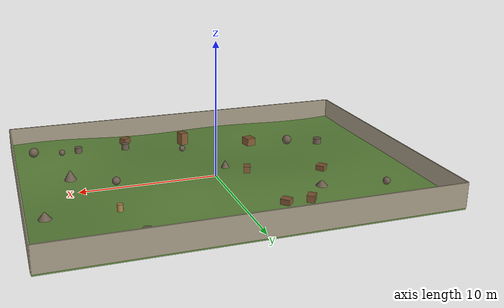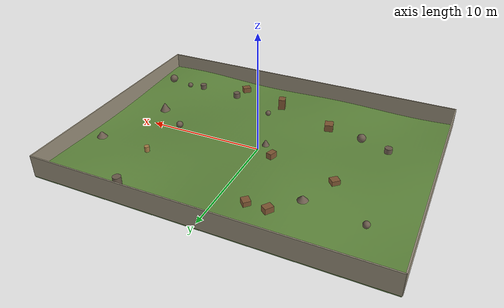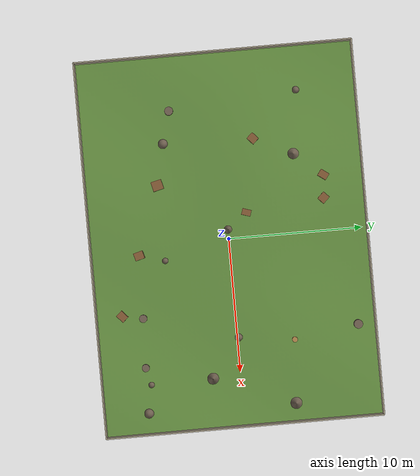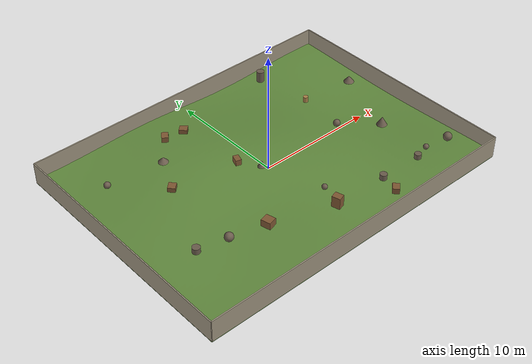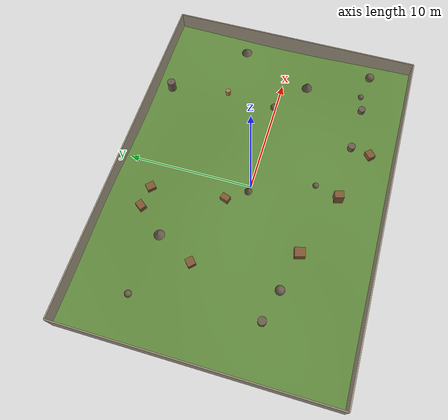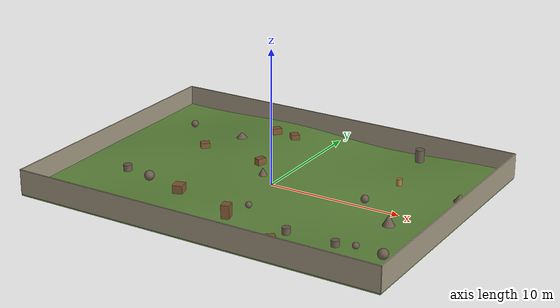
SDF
<?xml version='1.0' encoding='utf-8'?>
<sdf version="1.7">
  <world name="terrain_4">
    <gravity>0 0 -9.8</gravity>
    <plugin name="gazebo_ros_state" filename="libgazebo_ros_state.so">
      <ros>
        <namespace>/gazebo</namespace>
      </ros>
    </plugin>
    <physics name="ode_physics" type="ode">
      <max_step_size>0.001</max_step_size>
      <real_time_factor>1</real_time_factor>
      <real_time_update_rate>1000</real_time_update_rate>
      <ode>
        <solver>
          <type>quick</type>
          <iters>150</iters>
          <sor>1.3</sor>
        </solver>
        <constraints>
          <cfm>0</cfm>
          <erp>0.2</erp>
          <contact_max_correcting_vel>0.2</contact_max_correcting_vel>
          <contact_surface_layer>0.001</contact_surface_layer>
        </constraints>
      </ode>
    </physics>
    <light name="sun" type="directional">
      <pose>0 0 42 0 0 0</pose>
      <diffuse>0.92 0.91 0.88 1</diffuse>
      <specular>0.18 0.18 0.16 1</specular>
      <direction>-0.35 -0.28 -0.9</direction>
      <cast_shadows>true</cast_shadows>
    </light>
    <light name="fill" type="point">
      <pose>0 0 6 0 0 0</pose>
      <diffuse>0.35 0.36 0.34 1</diffuse>
      <specular>0.02 0.02 0.02 1</specular>
      <cast_shadows>false</cast_shadows>
      <attenuation>
        <range>80</range>
        <constant>0.5</constant>
        <linear>0.02</linear>
      </attenuation>
    </light>
    <scene>
      <ambient>0.52 0.56 0.48 1</ambient>
      <background>0.58 0.76 0.92 1</background>
    </scene>
    <gui fullscreen="false">
      <camera name="user_camera">
        <pose>19.6 -18.626087 23.8 0 0.65 2.2</pose>
        <view_controller>orbit</view_controller>
      </camera>
    </gui>
    <model name="terrain_4_structure">
      <static>true</static>
      <link name="structure">
        <collision name="ground_surface_collision">
          <pose>0 0 0 0 0 0</pose>
          <geometry>
            <mesh>
              <uri>3DModel/terrain/surfaces/terrain_4_ground_surface.stl</uri>
            </mesh>
          </geometry>
          <max_contacts>40</max_contacts>
          <surface>
            <friction>
              <ode>
                <mu>8</mu>
                <mu2>8</mu2>
              </ode>
            </friction>
            <contact>
              <ode>
                <kp>1e7</kp>
                <kd>1000</kd>
                <max_vel>0.1</max_vel>
                <min_depth>0.001</min_depth>
              </ode>
            </contact>
          </surface>
        </collision>
        <visual name="ground_surface_visual">
          <pose>0 0 0 0 0 0</pose>
          <geometry>
            <mesh>
              <uri>3DModel/terrain/surfaces/terrain_4_ground_surface.stl</uri>
            </mesh>
          </geometry>
          <material>
            <ambient>0.38 0.54 0.24 1</ambient>
            <diffuse>0.38 0.54 0.24 1</diffuse>
          </material>
        </visual>
        <collision name="rock_box_0_collision">
          <pose>-7.30434783 2.43478261 0.708865631 0 0 0.749227571</pose>
          <geometry>
            <box>
              <size>0.669565217 0.608695652 0.395652174</size>
            </box>
          </geometry>
          <max_contacts>40</max_contacts>
          <surface>
            <friction>
              <ode>
                <mu>2</mu>
                <mu2>2</mu2>
              </ode>
            </friction>
            <contact>
              <ode>
                <kp>1e7</kp>
                <kd>1000</kd>
                <max_vel>0.1</max_vel>
                <min_depth>0.001</min_depth>
              </ode>
            </contact>
          </surface>
        </collision>
        <visual name="rock_box_0_visual">
          <pose>-7.30434783 2.43478261 0.708865631 0 0 0.749227571</pose>
          <geometry>
            <box>
              <size>0.669565217 0.608695652 0.395652174</size>
            </box>
          </geometry>
          <material>
            <ambient>0.50 0.34 0.20 1</ambient>
            <diffuse>0.50 0.34 0.20 1</diffuse>
          </material>
        </visual>
        <collision name="rock_round_1_collision">
          <pose>1.2173913 -4.86956522 0.599886474 0 0 0</pose>
          <geometry>
            <sphere>
              <radius>0.23130434782608697</radius>
            </sphere>
          </geometry>
          <max_contacts>40</max_contacts>
          <surface>
            <friction>
              <ode>
                <mu>2</mu>
                <mu2>2</mu2>
              </ode>
            </friction>
            <contact>
              <ode>
                <kp>1e7</kp>
                <kd>1000</kd>
                <max_vel>0.1</max_vel>
                <min_depth>0.001</min_depth>
              </ode>
            </contact>
          </surface>
        </collision>
        <visual name="rock_round_1_visual">
          <pose>1.2173913 -4.86956522 0.599886474 0 0 0</pose>
          <geometry>
            <sphere>
              <radius>0.23130434782608697</radius>
            </sphere>
          </geometry>
          <material>
            <ambient>0.42 0.36 0.30 1</ambient>
            <diffuse>0.42 0.36 0.30 1</diffuse>
          </material>
        </visual>
        <collision name="stone_column_2_collision">
          <pose>7.91304348 4.26086957 0.440526845 0 0 0</pose>
          <geometry>
            <cylinder>
              <radius>0.20695652173913046</radius>
              <length>0.4869565217391305</length>
            </cylinder>
          </geometry>
          <max_contacts>40</max_contacts>
          <surface>
            <friction>
              <ode>
                <mu>2</mu>
                <mu2>2</mu2>
              </ode>
            </friction>
            <contact>
              <ode>
                <kp>1e7</kp>
                <kd>1000</kd>
                <max_vel>0.1</max_vel>
                <min_depth>0.001</min_depth>
              </ode>
            </contact>
          </surface>
        </collision>
        <visual name="stone_column_2_visual">
          <pose>7.91304348 4.26086957 0.440526845 0 0 0</pose>
          <geometry>
            <cylinder>
              <radius>0.20695652173913046</radius>
              <length>0.4869565217391305</length>
            </cylinder>
          </geometry>
          <material>
            <ambient>0.66 0.50 0.28 1</ambient>
            <diffuse>0.66 0.50 0.28 1</diffuse>
          </material>
        </visual>
        <collision name="rock_box_3_collision">
          <pose>-2.43478261 7.30434783 0.75622765 0 0 -0.8005458</pose>
          <geometry>
            <box>
              <size>0.669565217 0.608695652 0.395652174</size>
            </box>
          </geometry>
          <max_contacts>40</max_contacts>
          <surface>
            <friction>
              <ode>
                <mu>2</mu>
                <mu2>2</mu2>
              </ode>
            </friction>
            <contact>
              <ode>
                <kp>1e7</kp>
                <kd>1000</kd>
                <max_vel>0.1</max_vel>
                <min_depth>0.001</min_depth>
              </ode>
            </contact>
          </surface>
        </collision>
        <visual name="rock_box_3_visual">
          <pose>-2.43478261 7.30434783 0.75622765 0 0 -0.8005458</pose>
          <geometry>
            <box>
              <size>0.669565217 0.608695652 0.395652174</size>
            </box>
          </geometry>
          <material>
            <ambient>0.50 0.34 0.20 1</ambient>
            <diffuse>0.50 0.34 0.20 1</diffuse>
          </material>
        </visual>
        <collision name="rock_round_4_collision">
          <pose>10.3478261 -6.69565217 0.640613592 0 0 0</pose>
          <geometry>
            <sphere>
              <radius>0.23130434782608697</radius>
            </sphere>
          </geometry>
          <max_contacts>40</max_contacts>
          <surface>
            <friction>
              <ode>
                <mu>2</mu>
                <mu2>2</mu2>
              </ode>
            </friction>
            <contact>
              <ode>
                <kp>1e7</kp>
                <kd>1000</kd>
                <max_vel>0.1</max_vel>
                <min_depth>0.001</min_depth>
              </ode>
            </contact>
          </surface>
        </collision>
        <visual name="rock_round_4_visual">
          <pose>10.3478261 -6.69565217 0.640613592 0 0 0</pose>
          <geometry>
            <sphere>
              <radius>0.23130434782608697</radius>
            </sphere>
          </geometry>
          <material>
            <ambient>0.42 0.36 0.30 1</ambient>
            <diffuse>0.42 0.36 0.30 1</diffuse>
          </material>
        </visual>
        <collision name="boundary_0_collision">
          <pose>0 -10.3478261 0.852173913 0 0 0</pose>
          <geometry>
            <box>
              <size>28 0.0973913043 1.82608696</size>
            </box>
          </geometry>
          <max_contacts>40</max_contacts>
          <surface>
            <friction>
              <ode>
                <mu>2</mu>
                <mu2>2</mu2>
              </ode>
            </friction>
            <contact>
              <ode>
                <kp>1e7</kp>
                <kd>1000</kd>
                <max_vel>0.1</max_vel>
                <min_depth>0.001</min_depth>
              </ode>
            </contact>
          </surface>
        </collision>
        <visual name="boundary_0_visual">
          <pose>0 -10.3478261 0.852173913 0 0 0</pose>
          <geometry>
            <box>
              <size>28 0.0973913043 1.82608696</size>
            </box>
          </geometry>
          <material>
            <ambient>0.62 0.58 0.50 1</ambient>
            <diffuse>0.62 0.58 0.50 1</diffuse>
          </material>
        </visual>
        <collision name="boundary_1_collision">
          <pose>14 0 0.852173913 0 0 1.57079633</pose>
          <geometry>
            <box>
              <size>20.6956522 0.0973913043 1.82608696</size>
            </box>
          </geometry>
          <max_contacts>40</max_contacts>
          <surface>
            <friction>
              <ode>
                <mu>2</mu>
                <mu2>2</mu2>
              </ode>
            </friction>
            <contact>
              <ode>
                <kp>1e7</kp>
                <kd>1000</kd>
                <max_vel>0.1</max_vel>
                <min_depth>0.001</min_depth>
              </ode>
            </contact>
          </surface>
        </collision>
        <visual name="boundary_1_visual">
          <pose>14 0 0.852173913 0 0 1.57079633</pose>
          <geometry>
            <box>
              <size>20.6956522 0.0973913043 1.82608696</size>
            </box>
          </geometry>
          <material>
            <ambient>0.62 0.58 0.50 1</ambient>
            <diffuse>0.62 0.58 0.50 1</diffuse>
          </material>
        </visual>
        <collision name="boundary_2_collision">
          <pose>0 10.3478261 0.852173913 0 0 3.14159265</pose>
          <geometry>
            <box>
              <size>28 0.0973913043 1.82608696</size>
            </box>
          </geometry>
          <max_contacts>40</max_contacts>
          <surface>
            <friction>
              <ode>
                <mu>2</mu>
                <mu2>2</mu2>
              </ode>
            </friction>
            <contact>
              <ode>
                <kp>1e7</kp>
                <kd>1000</kd>
                <max_vel>0.1</max_vel>
                <min_depth>0.001</min_depth>
              </ode>
            </contact>
          </surface>
        </collision>
        <visual name="boundary_2_visual">
          <pose>0 10.3478261 0.852173913 0 0 3.14159265</pose>
          <geometry>
            <box>
              <size>28 0.0973913043 1.82608696</size>
            </box>
          </geometry>
          <material>
            <ambient>0.62 0.58 0.50 1</ambient>
            <diffuse>0.62 0.58 0.50 1</diffuse>
          </material>
        </visual>
        <collision name="boundary_3_collision">
          <pose>-14 0 0.852173913 0 0 -1.57079633</pose>
          <geometry>
            <box>
              <size>20.6956522 0.0973913043 1.82608696</size>
            </box>
          </geometry>
          <max_contacts>40</max_contacts>
          <surface>
            <friction>
              <ode>
                <mu>2</mu>
                <mu2>2</mu2>
              </ode>
            </friction>
            <contact>
              <ode>
                <kp>1e7</kp>
                <kd>1000</kd>
                <max_vel>0.1</max_vel>
                <min_depth>0.001</min_depth>
              </ode>
            </contact>
          </surface>
        </collision>
        <visual name="boundary_3_visual">
          <pose>-14 0 0.852173913 0 0 -1.57079633</pose>
          <geometry>
            <box>
              <size>20.6956522 0.0973913043 1.82608696</size>
            </box>
          </geometry>
          <material>
            <ambient>0.62 0.58 0.50 1</ambient>
            <diffuse>0.62 0.58 0.50 1</diffuse>
          </material>
        </visual>
        <collision name="irregular_prop_0_collision">
          <pose>-4.15307704 7.43747727 0.822766621 0 0 0.945281499</pose>
          <geometry>
            <box>
              <size>0.714205937 0.544265324 0.473203677</size>
            </box>
          </geometry>
          <max_contacts>40</max_contacts>
          <surface>
            <friction>
              <ode>
                <mu>2</mu>
                <mu2>2</mu2>
              </ode>
            </friction>
            <contact>
              <ode>
                <kp>1e7</kp>
                <kd>1000</kd>
                <max_vel>0.1</max_vel>
                <min_depth>0.001</min_depth>
              </ode>
            </contact>
          </surface>
        </collision>
        <visual name="irregular_prop_0_visual">
          <pose>-4.15307704 7.43747727 0.822766621 0 0 0.945281499</pose>
          <geometry>
            <box>
              <size>0.714205937 0.544265324 0.473203677</size>
            </box>
          </geometry>
          <material>
            <ambient>0.50 0.34 0.20 1</ambient>
            <diffuse>0.50 0.34 0.20 1</diffuse>
          </material>
        </visual>
        <collision name="irregular_prop_1_collision">
          <pose>-9.89283804 -3.6285424 0.463335983 0 0 -2.81643884</pose>
          <geometry>
            <cylinder>
              <radius>0.31810157148684093</radius>
              <length>0.4577122383465519</length>
            </cylinder>
          </geometry>
          <max_contacts>40</max_contacts>
          <surface>
            <friction>
              <ode>
                <mu>2</mu>
                <mu2>2</mu2>
              </ode>
            </friction>
            <contact>
              <ode>
                <kp>1e7</kp>
                <kd>1000</kd>
                <max_vel>0.1</max_vel>
                <min_depth>0.001</min_depth>
              </ode>
            </contact>
          </surface>
        </collision>
        <visual name="irregular_prop_1_visual">
          <pose>-9.89283804 -3.6285424 0.463335983 0 0 -2.81643884</pose>
          <geometry>
            <cylinder>
              <radius>0.31810157148684093</radius>
              <length>0.4577122383465519</length>
            </cylinder>
          </geometry>
          <material>
            <ambient>0.42 0.36 0.30 1</ambient>
            <diffuse>0.42 0.36 0.30 1</diffuse>
          </material>
        </visual>
        <collision name="irregular_prop_2_collision">
          <pose>-10.6426815 5.94192272 0.583037257 0 0 -2.58608244</pose>
          <geometry>
            <sphere>
              <radius>0.26984292931482456</radius>
            </sphere>
          </geometry>
          <max_contacts>40</max_contacts>
          <surface>
            <friction>
              <ode>
                <mu>2</mu>
                <mu2>2</mu2>
              </ode>
            </friction>
            <contact>
              <ode>
                <kp>1e7</kp>
                <kd>1000</kd>
                <max_vel>0.1</max_vel>
                <min_depth>0.001</min_depth>
              </ode>
            </contact>
          </surface>
        </collision>
        <visual name="irregular_prop_2_visual">
          <pose>-10.6426815 5.94192272 0.583037257 0 0 -2.58608244</pose>
          <geometry>
            <sphere>
              <radius>0.26984292931482456</radius>
            </sphere>
          </geometry>
          <material>
            <ambient>0.42 0.36 0.30 1</ambient>
            <diffuse>0.42 0.36 0.30 1</diffuse>
          </material>
        </visual>
        <collision name="irregular_prop_3_collision">
          <pose>0 0 0 0 0 0</pose>
          <geometry>
            <mesh>
              <uri>3DModel/terrain/surfaces/terrain_4_irregular_prop_3.stl</uri>
            </mesh>
          </geometry>
          <max_contacts>40</max_contacts>
          <surface>
            <friction>
              <ode>
                <mu>8</mu>
                <mu2>8</mu2>
              </ode>
            </friction>
            <contact>
              <ode>
                <kp>1e7</kp>
                <kd>1000</kd>
                <max_vel>0.1</max_vel>
                <min_depth>0.001</min_depth>
              </ode>
            </contact>
          </surface>
        </collision>
        <visual name="irregular_prop_3_visual">
          <pose>0 0 0 0 0 0</pose>
          <geometry>
            <mesh>
              <uri>3DModel/terrain/surfaces/terrain_4_irregular_prop_3.stl</uri>
            </mesh>
          </geometry>
          <material>
            <ambient>0.42 0.36 0.30 1</ambient>
            <diffuse>0.42 0.36 0.30 1</diffuse>
          </material>
        </visual>
        <collision name="irregular_prop_4_collision">
          <pose>-4.42943409 -4.96416138 0.589715856 0 0 0.244772411</pose>
          <geometry>
            <box>
              <size>0.72628919 0.797720492 0.596664756</size>
            </box>
          </geometry>
          <max_contacts>40</max_contacts>
          <surface>
            <friction>
              <ode>
                <mu>2</mu>
                <mu2>2</mu2>
              </ode>
            </friction>
            <contact>
              <ode>
                <kp>1e7</kp>
                <kd>1000</kd>
                <max_vel>0.1</max_vel>
                <min_depth>0.001</min_depth>
              </ode>
            </contact>
          </surface>
        </collision>
        <visual name="irregular_prop_4_visual">
          <pose>-4.42943409 -4.96416138 0.589715856 0 0 0.244772411</pose>
          <geometry>
            <box>
              <size>0.72628919 0.797720492 0.596664756</size>
            </box>
          </geometry>
          <material>
            <ambient>0.50 0.34 0.20 1</ambient>
            <diffuse>0.50 0.34 0.20 1</diffuse>
          </material>
        </visual>
        <collision name="irregular_prop_5_collision">
          <pose>5.37438342 -6.88226621 0.543397025 0 0 2.36631415</pose>
          <geometry>
            <cylinder>
              <radius>0.29263253430047054</radius>
              <length>0.4763464510211125</length>
            </cylinder>
          </geometry>
          <max_contacts>40</max_contacts>
          <surface>
            <friction>
              <ode>
                <mu>2</mu>
                <mu2>2</mu2>
              </ode>
            </friction>
            <contact>
              <ode>
                <kp>1e7</kp>
                <kd>1000</kd>
                <max_vel>0.1</max_vel>
                <min_depth>0.001</min_depth>
              </ode>
            </contact>
          </surface>
        </collision>
        <visual name="irregular_prop_5_visual">
          <pose>5.37438342 -6.88226621 0.543397025 0 0 2.36631415</pose>
          <geometry>
            <cylinder>
              <radius>0.29263253430047054</radius>
              <length>0.4763464510211125</length>
            </cylinder>
          </geometry>
          <material>
            <ambient>0.42 0.36 0.30 1</ambient>
            <diffuse>0.42 0.36 0.30 1</diffuse>
          </material>
        </visual>
        <collision name="irregular_prop_6_collision">
          <pose>7.38722708 0.097555576 0.585598463 0 0 -0.573622824</pose>
          <geometry>
            <sphere>
              <radius>0.29050786326188927</radius>
            </sphere>
          </geometry>
          <max_contacts>40</max_contacts>
          <surface>
            <friction>
              <ode>
                <mu>2</mu>
                <mu2>2</mu2>
              </ode>
            </friction>
            <contact>
              <ode>
                <kp>1e7</kp>
                <kd>1000</kd>
                <max_vel>0.1</max_vel>
                <min_depth>0.001</min_depth>
              </ode>
            </contact>
          </surface>
        </collision>
        <visual name="irregular_prop_6_visual">
          <pose>7.38722708 0.097555576 0.585598463 0 0 -0.573622824</pose>
          <geometry>
            <sphere>
              <radius>0.29050786326188927</radius>
            </sphere>
          </geometry>
          <material>
            <ambient>0.42 0.36 0.30 1</ambient>
            <diffuse>0.42 0.36 0.30 1</diffuse>
          </material>
        </visual>
        <collision name="irregular_prop_7_collision">
          <pose>0 0 0 0 0 0</pose>
          <geometry>
            <mesh>
              <uri>3DModel/terrain/surfaces/terrain_4_irregular_prop_7.stl</uri>
            </mesh>
          </geometry>
          <max_contacts>40</max_contacts>
          <surface>
            <friction>
              <ode>
                <mu>8</mu>
                <mu2>8</mu2>
              </ode>
            </friction>
            <contact>
              <ode>
                <kp>1e7</kp>
                <kd>1000</kd>
                <max_vel>0.1</max_vel>
                <min_depth>0.001</min_depth>
              </ode>
            </contact>
          </surface>
        </collision>
        <visual name="irregular_prop_7_visual">
          <pose>0 0 0 0 0 0</pose>
          <geometry>
            <mesh>
              <uri>3DModel/terrain/surfaces/terrain_4_irregular_prop_7.stl</uri>
            </mesh>
          </geometry>
          <material>
            <ambient>0.42 0.36 0.30 1</ambient>
            <diffuse>0.42 0.36 0.30 1</diffuse>
          </material>
        </visual>
        <collision name="irregular_prop_8_collision">
          <pose>5.08595597 -8.426287 0.491145755 0 0 0.742199668</pose>
          <geometry>
            <box>
              <size>0.695734282 0.565475846 0.480070926</size>
            </box>
          </geometry>
          <max_contacts>40</max_contacts>
          <surface>
            <friction>
              <ode>
                <mu>2</mu>
                <mu2>2</mu2>
              </ode>
            </friction>
            <contact>
              <ode>
                <kp>1e7</kp>
                <kd>1000</kd>
                <max_vel>0.1</max_vel>
                <min_depth>0.001</min_depth>
              </ode>
            </contact>
          </surface>
        </collision>
        <visual name="irregular_prop_8_visual">
          <pose>5.08595597 -8.426287 0.491145755 0 0 0.742199668</pose>
          <geometry>
            <box>
              <size>0.695734282 0.565475846 0.480070926</size>
            </box>
          </geometry>
          <material>
            <ambient>0.50 0.34 0.20 1</ambient>
            <diffuse>0.50 0.34 0.20 1</diffuse>
          </material>
        </visual>
        <collision name="irregular_prop_9_collision">
          <pose>7.16668719 9.05915117 0.632088249 0 0 -1.33823746</pose>
          <geometry>
            <cylinder>
              <radius>0.32875651469616</radius>
              <length>0.9522665152724484</length>
            </cylinder>
          </geometry>
          <max_contacts>40</max_contacts>
          <surface>
            <friction>
              <ode>
                <mu>2</mu>
                <mu2>2</mu2>
              </ode>
            </friction>
            <contact>
              <ode>
                <kp>1e7</kp>
                <kd>1000</kd>
                <max_vel>0.1</max_vel>
                <min_depth>0.001</min_depth>
              </ode>
            </contact>
          </surface>
        </collision>
        <visual name="irregular_prop_9_visual">
          <pose>7.16668719 9.05915117 0.632088249 0 0 -1.33823746</pose>
          <geometry>
            <cylinder>
              <radius>0.32875651469616</radius>
              <length>0.9522665152724484</length>
            </cylinder>
          </geometry>
          <material>
            <ambient>0.42 0.36 0.30 1</ambient>
            <diffuse>0.42 0.36 0.30 1</diffuse>
          </material>
        </visual>
        <collision name="irregular_prop_10_collision">
          <pose>12.4485348 -7.05781447 0.757131779 0 0 -1.43236082</pose>
          <geometry>
            <sphere>
              <radius>0.3633810920235708</radius>
            </sphere>
          </geometry>
          <max_contacts>40</max_contacts>
          <surface>
            <friction>
              <ode>
                <mu>2</mu>
                <mu2>2</mu2>
              </ode>
            </friction>
            <contact>
              <ode>
                <kp>1e7</kp>
                <kd>1000</kd>
                <max_vel>0.1</max_vel>
                <min_depth>0.001</min_depth>
              </ode>
            </contact>
          </surface>
        </collision>
        <visual name="irregular_prop_10_visual">
          <pose>12.4485348 -7.05781447 0.757131779 0 0 -1.43236082</pose>
          <geometry>
            <sphere>
              <radius>0.3633810920235708</radius>
            </sphere>
          </geometry>
          <material>
            <ambient>0.42 0.36 0.30 1</ambient>
            <diffuse>0.42 0.36 0.30 1</diffuse>
          </material>
        </visual>
        <collision name="irregular_prop_11_collision">
          <pose>0 0 0 0 0 0</pose>
          <geometry>
            <mesh>
              <uri>3DModel/terrain/surfaces/terrain_4_irregular_prop_11.stl</uri>
            </mesh>
          </geometry>
          <max_contacts>40</max_contacts>
          <surface>
            <friction>
              <ode>
                <mu>8</mu>
                <mu2>8</mu2>
              </ode>
            </friction>
            <contact>
              <ode>
                <kp>1e7</kp>
                <kd>1000</kd>
                <max_vel>0.1</max_vel>
                <min_depth>0.001</min_depth>
              </ode>
            </contact>
          </surface>
        </collision>
        <visual name="irregular_prop_11_visual">
          <pose>0 0 0 0 0 0</pose>
          <geometry>
            <mesh>
              <uri>3DModel/terrain/surfaces/terrain_4_irregular_prop_11.stl</uri>
            </mesh>
          </geometry>
          <material>
            <ambient>0.42 0.36 0.30 1</ambient>
            <diffuse>0.42 0.36 0.30 1</diffuse>
          </material>
        </visual>
        <collision name="irregular_prop_12_collision">
          <pose>0.672347155 -6.76325173 0.779906348 0 0 1.84078694</pose>
          <geometry>
            <box>
              <size>0.70516353 0.588475506 0.973165254</size>
            </box>
          </geometry>
          <max_contacts>40</max_contacts>
          <surface>
            <friction>
              <ode>
                <mu>2</mu>
                <mu2>2</mu2>
              </ode>
            </friction>
            <contact>
              <ode>
                <kp>1e7</kp>
                <kd>1000</kd>
                <max_vel>0.1</max_vel>
                <min_depth>0.001</min_depth>
              </ode>
            </contact>
          </surface>
        </collision>
        <visual name="irregular_prop_12_visual">
          <pose>0.672347155 -6.76325173 0.779906348 0 0 1.84078694</pose>
          <geometry>
            <box>
              <size>0.70516353 0.588475506 0.973165254</size>
            </box>
          </geometry>
          <material>
            <ambient>0.50 0.34 0.20 1</ambient>
            <diffuse>0.50 0.34 0.20 1</diffuse>
          </material>
        </visual>
        <collision name="irregular_prop_13_collision">
          <pose>9.05323277 -7.00959517 0.621904556 0 0 1.74113977</pose>
          <geometry>
            <cylinder>
              <radius>0.28246384867163865</radius>
              <length>0.4292475780764613</length>
            </cylinder>
          </geometry>
          <max_contacts>40</max_contacts>
          <surface>
            <friction>
              <ode>
                <mu>2</mu>
                <mu2>2</mu2>
              </ode>
            </friction>
            <contact>
              <ode>
                <kp>1e7</kp>
                <kd>1000</kd>
                <max_vel>0.1</max_vel>
                <min_depth>0.001</min_depth>
              </ode>
            </contact>
          </surface>
        </collision>
        <visual name="irregular_prop_13_visual">
          <pose>9.05323277 -7.00959517 0.621904556 0 0 1.74113977</pose>
          <geometry>
            <cylinder>
              <radius>0.28246384867163865</radius>
              <length>0.4292475780764613</length>
            </cylinder>
          </geometry>
          <material>
            <ambient>0.42 0.36 0.30 1</ambient>
            <diffuse>0.42 0.36 0.30 1</diffuse>
          </material>
        </visual>
        <collision name="irregular_prop_14_collision">
          <pose>-7.48311087 -4.27775741 0.596071693 0 0 2.89885706</pose>
          <geometry>
            <sphere>
              <radius>0.3637628307092641</radius>
            </sphere>
          </geometry>
          <max_contacts>40</max_contacts>
          <surface>
            <friction>
              <ode>
                <mu>2</mu>
                <mu2>2</mu2>
              </ode>
            </friction>
            <contact>
              <ode>
                <kp>1e7</kp>
                <kd>1000</kd>
                <max_vel>0.1</max_vel>
                <min_depth>0.001</min_depth>
              </ode>
            </contact>
          </surface>
        </collision>
        <visual name="irregular_prop_14_visual">
          <pose>-7.48311087 -4.27775741 0.596071693 0 0 2.89885706</pose>
          <geometry>
            <sphere>
              <radius>0.3637628307092641</radius>
            </sphere>
          </geometry>
          <material>
            <ambient>0.42 0.36 0.30 1</ambient>
            <diffuse>0.42 0.36 0.30 1</diffuse>
          </material>
        </visual>
        <collision name="irregular_prop_15_collision">
          <pose>0 0 0 0 0 0</pose>
          <geometry>
            <mesh>
              <uri>3DModel/terrain/surfaces/terrain_4_irregular_prop_15.stl</uri>
            </mesh>
          </geometry>
          <max_contacts>40</max_contacts>
          <surface>
            <friction>
              <ode>
                <mu>8</mu>
                <mu2>8</mu2>
              </ode>
            </friction>
            <contact>
              <ode>
                <kp>1e7</kp>
                <kd>1000</kd>
                <max_vel>0.1</max_vel>
                <min_depth>0.001</min_depth>
              </ode>
            </contact>
          </surface>
        </collision>
        <visual name="irregular_prop_15_visual">
          <pose>0 0 0 0 0 0</pose>
          <geometry>
            <mesh>
              <uri>3DModel/terrain/surfaces/terrain_4_irregular_prop_15.stl</uri>
            </mesh>
          </geometry>
          <material>
            <ambient>0.42 0.36 0.30 1</ambient>
            <diffuse>0.42 0.36 0.30 1</diffuse>
          </material>
        </visual>
        <collision name="irregular_prop_16_collision">
          <pose>-1.85330246 1.47932733 0.904370513 0 0 1.25250259</pose>
          <geometry>
            <box>
              <size>0.683344045 0.470913613 0.491868233</size>
            </box>
          </geometry>
          <max_contacts>40</max_contacts>
          <surface>
            <friction>
              <ode>
                <mu>2</mu>
                <mu2>2</mu2>
              </ode>
            </friction>
            <contact>
              <ode>
                <kp>1e7</kp>
                <kd>1000</kd>
                <max_vel>0.1</max_vel>
                <min_depth>0.001</min_depth>
              </ode>
            </contact>
          </surface>
        </collision>
        <visual name="irregular_prop_16_visual">
          <pose>-1.85330246 1.47932733 0.904370513 0 0 1.25250259</pose>
          <geometry>
            <box>
              <size>0.683344045 0.470913613 0.491868233</size>
            </box>
          </geometry>
          <material>
            <ambient>0.50 0.34 0.20 1</ambient>
            <diffuse>0.50 0.34 0.20 1</diffuse>
          </material>
        </visual>
      </link>
    </model>
  </world>
</sdf>
